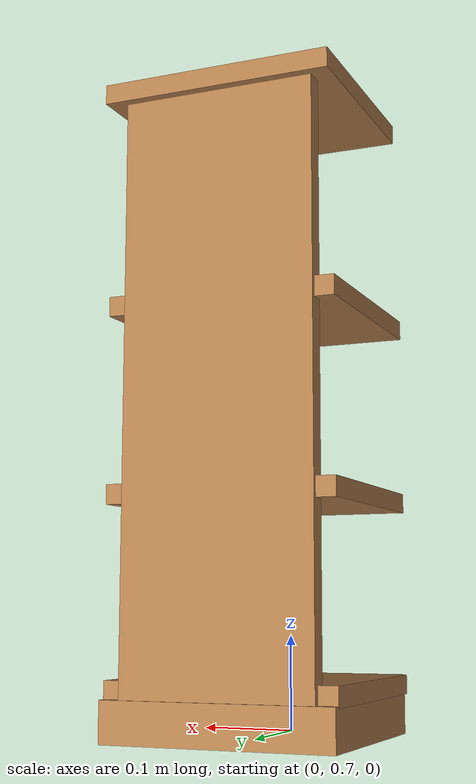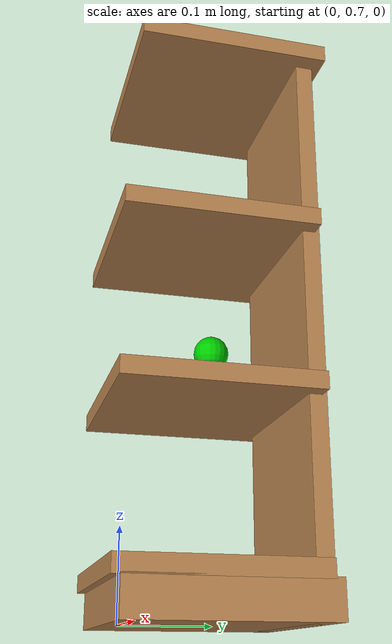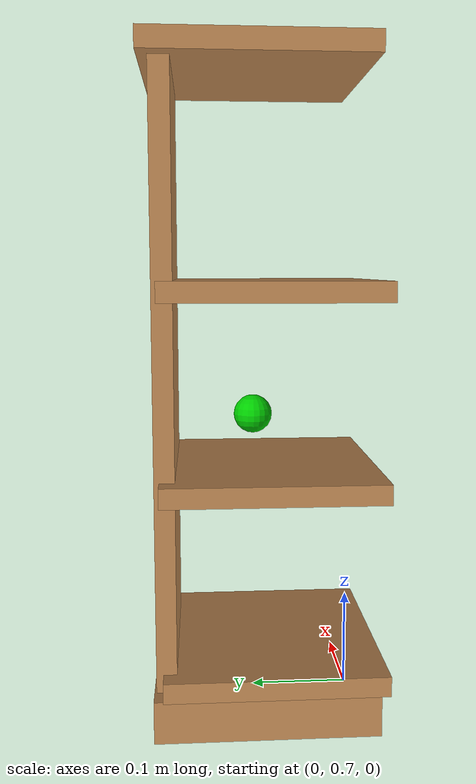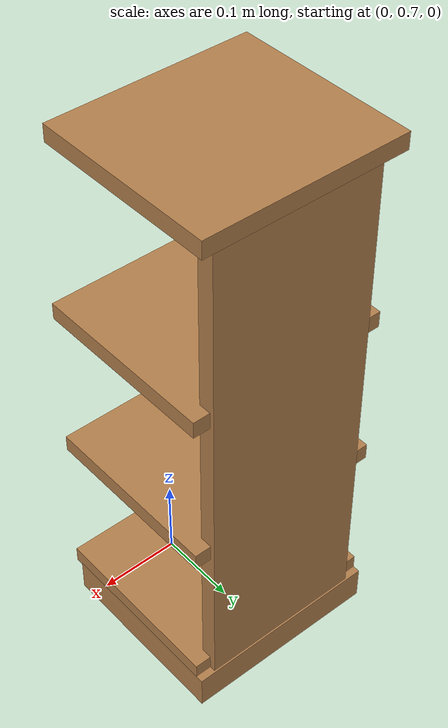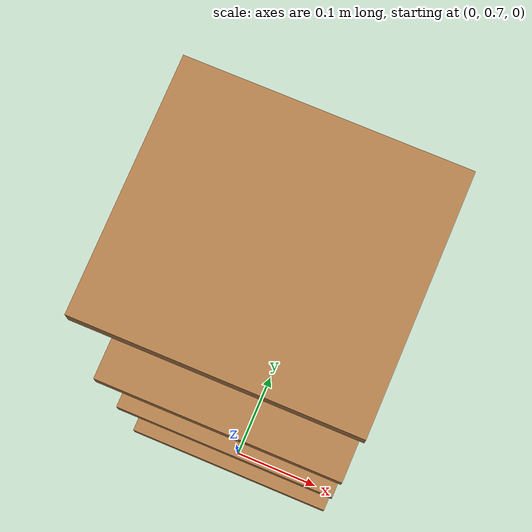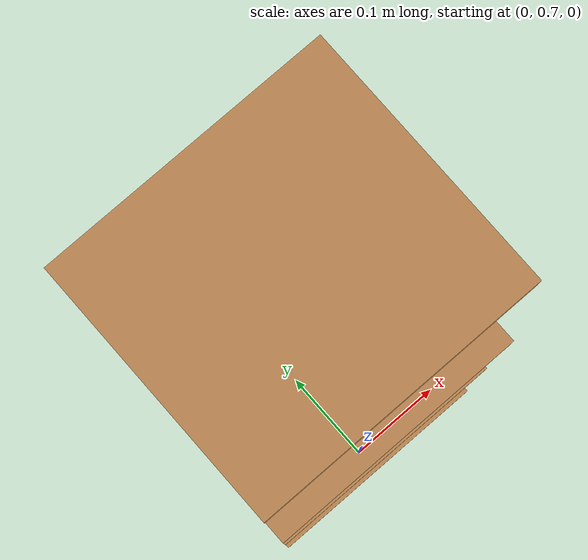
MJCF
<mujoco model="shelf_goal">
    <compiler angle="radian" inertiafromgeom="auto" inertiagrouprange="4 5"/>
    <asset>
        <texture name="T_shelf_wood" type="cube" file="textures/wood1.png"/>

        <material name="shelf_col" texture="T_shelf_wood" reflectance="0.7" texrepeat="5 5" texuniform="true"/>
        <material name="shelf_white" rgba=".85 .85 .85 1" shininess="1" reflectance=".7" specular=".5"/>
        <material name="shelf_wood" texture="T_shelf_wood" shininess="1" reflectance="1" specular=".5"/>
        <mesh file="meshes/shelf/shelf.stl" name="shelf"/>
        <mesh file="meshes/shelf/shelf_supports.stl" name="shelf_supports"/>
    </asset>
    <default>

        <default class="shelf_base">
            <joint armature="0.001" damping="2" limited="true"/>
            <geom conaffinity="0" contype="0" group="1" type="mesh"/>
            <position ctrllimited="true" ctrlrange="0 1.57"/>
            <default class="shelf_viz">
                <geom condim="4" type="mesh"/>
            </default>
            <default class="shelf_col">
                <geom conaffinity="1" condim="3" contype="0" group="4" material="shelf_col" solimp="0.99 0.99 0.01"
                      solref="0.01 1"/>
            </default>
        </default>
    </default>

    <worldbody>
        <body pos="0 0.8 0">
            <body name="object">
                <geom class="shelf_col" pos="0 0 0.65" size="0.12 0.11 0.01" type="box" group="1"/>
                <geom class="shelf_col" pos="0 -0.015 0.43" size="0.12 0.11 0.01" type="box" group="1"
                      />
                <geom class="shelf_col" pos="0 -0.015 0.24" size="0.12 0.11 0.01" type="box" group="1"
                      />
                <geom class="shelf_col" pos="0 -0.017 0.05" size="0.12 0.11 0.01" type="box" group="1"
                     />
                <geom class="shelf_col" pos="0 0.09 0.32" size="0.1 0.01 0.32" type="box" group="1"
                      />
                <geom class="shelf_col" pos="0.0 -0.008 0.021" size="0.12 0.11 0.021" type="box" group="1"
                      material="shelf_col"/>
                <site name="goal" pos="0 0 0.3" size="0.02" rgba="0 0.8 0 1"/>
            </body>
            <site rgba="0 0 0 0" size="0.0005" pos="0 0 -0.08" name="bottom_site"/>
            <site rgba="0 0 0 0" size="0.0005" pos="0 0 0.65" name="top_site"/>
            <site rgba="0 0 0 0" size="0.0005" pos="0.011 0.09 0" name="horizontal_radius_site"/>
        </body>
    </worldbody>
</mujoco>
